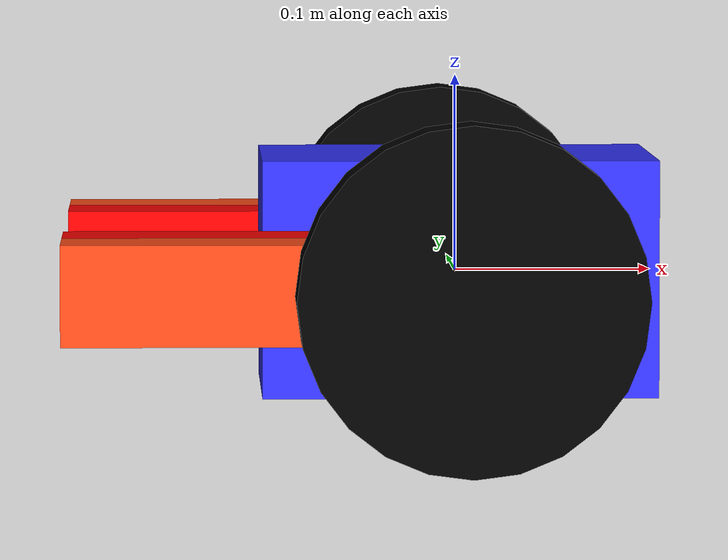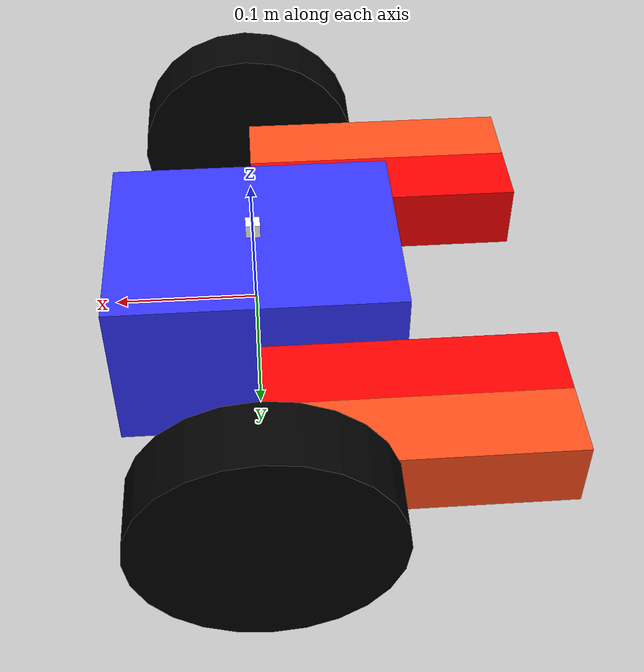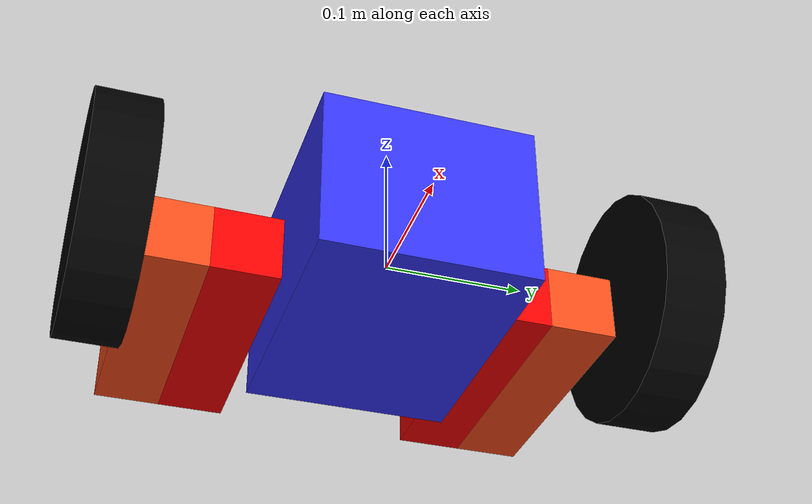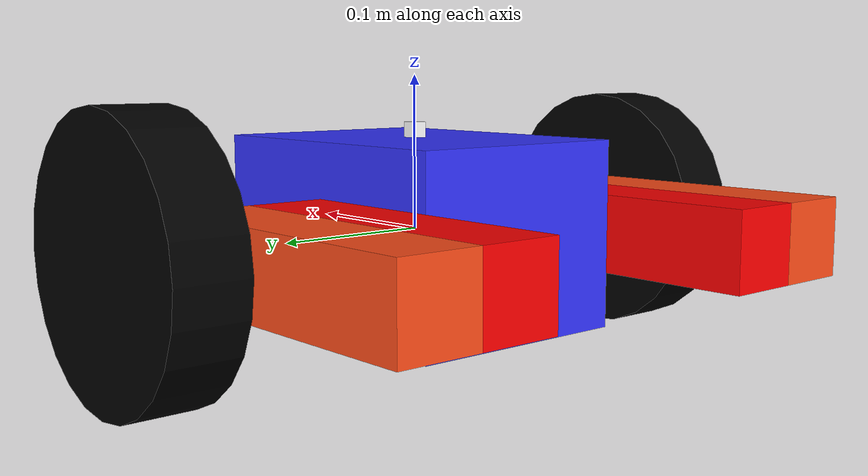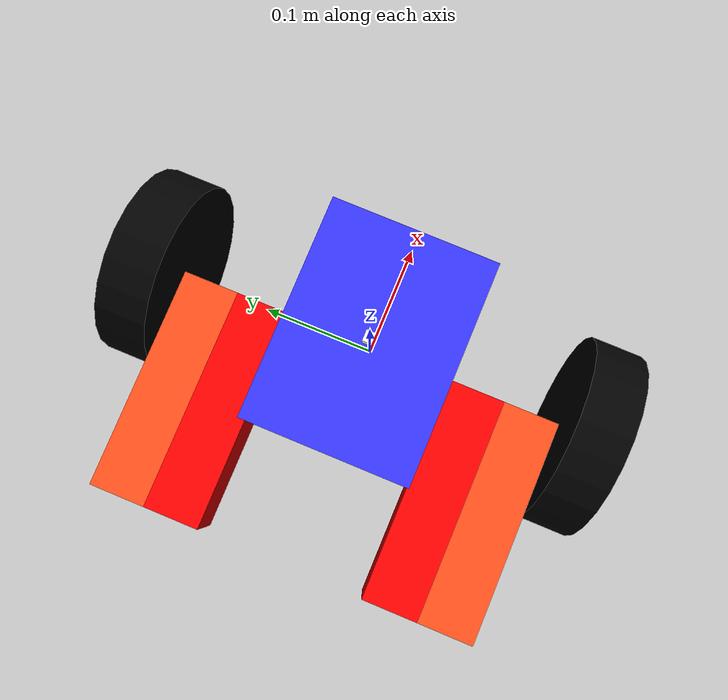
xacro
<?xml version="1.0"?>
<robot xmlns:xacro="http://www.ros.org/wiki/xacro">

    <xacro:include filename="consts.xacro"/>
    <xacro:include filename='inertial_macros.xacro'/>

    <!-- Limits -->
    <xacro:macro name="hip_limits">
        <limit lower="${hip_low_limit}" upper="${hip_high_limit}" velocity="${velocity}" effort="${effort}"/>
    </xacro:macro>
    <xacro:macro name="knee_limits">
        <limit lower="${knee_low_limit}" upper="${knee_high_limit}" velocity="${velocity}" effort="${effort}"/>
    </xacro:macro>

    <!-- *********** base link *********** -->
    <link name="base_link"></link>

    <link name="chassis_link">
        <xacro:inertial_box mass="${chassis_mass}" x="${chassis_length}" y="${chassis_width}" z="${chassis_height}">
            <origin xyz="0 0 0" rpy="0 0 0"/>
        </xacro:inertial_box>
        <visual>
            <origin xyz="0.0 0.0 0.0" rpy="0.0 0.0 0.0"/>
            <geometry>
                <box size="${chassis_length} ${chassis_width} ${chassis_height}"/>
            </geometry>
            <material name="blue"/>
        </visual>
        <collision>
            <origin xyz="0.0 0.0 0.0" rpy="0.0 0.0 0.0"/>
            <geometry>
                <box size="${chassis_length} ${chassis_width} ${chassis_height}"/>
            </geometry>
            <material name="blue"/>
        </collision>
    </link>

    <!-- imu -->
    <link name="imu_link">
        <xacro:inertial_box mass="${imu_mass}" x="${imu_length}" y="${imu_width}" z="${imu_height}">
            <origin xyz="0 0 0" rpy="0 0 0"/>
        </xacro:inertial_box>
        <visual>
            <origin xyz="0.0 0.0 0.0" rpy="0.0 0.0 0.0"/>
            <geometry>
                <box size="${imu_length} ${imu_width} ${imu_height}"/>
            </geometry>
            <material name="white"/>
        </visual>
        <collision>
            <origin xyz="0.0 0.0 0.0" rpy="0.0 0.0 0.0"/>
            <geometry>
                <box size="${imu_length} ${imu_width} ${imu_height}"/>
            </geometry>
            <material name="white"/>
        </collision>
    </link>

    <!-- hips -->
    <link name="left_hip_link">
        <visual>
            <origin xyz="0 0 -${rod_height/2}" rpy="0 0 0"/>
            <geometry>
                <box size="${rod_length} ${rod_width} ${rod_height}"/>
            </geometry>
            <material name="red"/>
        </visual>
        <collision>
            <origin xyz="0 0 -${rod_height/2}" rpy="0 0 0"/>
            <geometry>
                <box size="${rod_length} ${rod_width} ${rod_height}"/>
            </geometry>
            <material name="red"/>
        </collision>
        <xacro:inertial_box mass="${rod_mass}" x="${rod_length}" y="${rod_width}" z="${rod_height}">
            <origin xyz="0 0 -${rod_height/2}" rpy="0 0 0"/>
        </xacro:inertial_box>
    </link>

    <link name="right_hip_link">
        <visual>
            <origin xyz="0 0 -${rod_height/2}" rpy="0 0 0"/>
            <geometry>
                <box size="${rod_length} ${rod_width} ${rod_height}"/>
            </geometry>
            <material name="red"/>
        </visual>
        <collision>
            <origin xyz="0 0 -${rod_height/2}" rpy="0 0 0"/>
            <geometry>
                <box size="${rod_length} ${rod_width} ${rod_height}"/>
            </geometry>
            <material name="red"/>
        </collision>
        <xacro:inertial_box mass="${rod_mass}" x="${rod_length}" y="${rod_width}" z="${rod_height}">
            <origin xyz="0 0 -${rod_height/2}" rpy="0 0 0"/>
        </xacro:inertial_box>
    </link>

    <!-- knees -->
    <link name="left_knee_link">
        <visual>
            <origin xyz="0 0 ${rod_height/2}" rpy="0 0 0"/>
            <geometry>
                <box size="${rod_length} ${rod_width} ${rod_height}"/>
            </geometry>
            <material name="orange"/>
        </visual>
        <collision>
            <origin xyz="0 0 ${rod_height/2}" rpy="0 0 0"/>
            <geometry>
                <box size="${rod_length} ${rod_width} ${rod_height}"/>
            </geometry>
            <material name="orange"/>
        </collision>
        <xacro:inertial_box mass="${rod_mass}" x="${rod_length}" y="${rod_width}" z="${rod_height}">
            <origin xyz="0 0 ${rod_height/2}" rpy="0 0 0"/>
        </xacro:inertial_box>
    </link>

    <link name="right_knee_link">
        <visual>
            <origin xyz="0 0 ${rod_height/2}" rpy="0 0 0"/>
            <geometry>
                <box size="${rod_length} ${rod_width} ${rod_height}"/>
            </geometry>
            <material name="orange"/>
        </visual>
        <collision>
            <origin xyz="0 0 ${rod_height/2}" rpy="0 0 0"/>
            <geometry>
                <box size="${rod_length} ${rod_width} ${rod_height}"/>
            </geometry>
            <material name="orange"/>
        </collision>
        <xacro:inertial_box mass="${rod_mass}" x="${rod_length}" y="${rod_width}" z="${rod_height}">
            <origin xyz="0 0 ${rod_height/2}" rpy="0 0 0"/>
        </xacro:inertial_box>
    </link>

    <!-- wheels -->

    <link name="left_wheel">
        <visual>
            <origin xyz="0 0 0" rpy="0 0 0"/>
            <geometry>
                <cylinder radius="${wheel_radius}" length="${wheel_length}"/>
            </geometry>
            <material name="black"/>
        </visual>
        <collision>
            <origin xyz="0 0 0" rpy="0 0 0"/>
            <geometry>
                <cylinder radius="${wheel_radius}" length="${wheel_length}"/>
            </geometry>
            <surface>
                <friction>
                    <ode>
                        <mu>1</mu>
                        <mu2>1</mu2>
                        <fdir1>1 0 0</fdir1>
                    </ode>
                </friction>
            </surface>
        </collision>
        <xacro:inertial_cylinder mass="${wheel_mass}" length="${wheel_length}" radius="${wheel_radius}">
            <origin xyz="0 0 0" rpy="0 0 0"/>
        </xacro:inertial_cylinder>
    </link>

    <link name="right_wheel">
        <visual>
            <origin xyz="0 0 0" rpy="0 0 0"/>
            <geometry>
                <cylinder radius="${wheel_radius}" length="${wheel_length}"/>
            </geometry>
            <material name="black"/>
        </visual>
        <collision>
            <origin xyz="0 0 0" rpy="0 0 0"/>
            <geometry>
                <cylinder radius="${wheel_radius}" length="${wheel_length}"/>
            </geometry>
            <surface>
                <friction>
                    <ode>
                        <mu>1</mu>
                        <mu2>1</mu2>
                        <fdir1>1 0 0</fdir1>
                    </ode>
                </friction>
            </surface>
        </collision>
        <xacro:inertial_cylinder mass="${wheel_mass}" length="${wheel_length}" radius="${wheel_radius}">
            <origin xyz="0 0 0" rpy="0 0 0"/>
        </xacro:inertial_cylinder>
    </link>

    <!-- chassis_joint -->
    <joint name="chassis_joint" type="fixed">
        <parent link="base_link"/>
        <child link="chassis_link"/>
    </joint>

    <!-- imu joint -->
    <joint name="imu_joint" type="fixed">
        <origin xyz="0.0 0.0 ${chassis_height/2 + imu_height/2}" rpy="0.0 0.0 0.0"/>
        <parent link="chassis_link"/>
        <child link="imu_link"/>
    </joint>

    <!-- hip joints -->
    <joint name="left_hip_joint" type="revolute">
        <origin xyz="0.0 ${chassis_width/2 + rod_width/2} 0.0" rpy="0.0 ${3.142/2} 0.0"/>
        <parent link="chassis_link"/>
        <child link="left_hip_link"/>
        <axis xyz="0.0 1.0 0.0"/>
        <xacro:hip_limits></xacro:hip_limits>
        <xacro:if value="${use_dynamics}">
            <xacro:hip_joint_dynamics></xacro:hip_joint_dynamics>
        </xacro:if>
    </joint>

    <joint name="right_hip_joint" type="revolute">
        <origin xyz="0.0 -${chassis_width/2 + rod_width/2} 0.0" rpy="0.0 ${3.142/2} 0.0"/>
        <parent link="chassis_link"/>
        <child link="right_hip_link"/>
        <axis xyz="0.0 1.0 0.0"/>
        <xacro:hip_limits></xacro:hip_limits>
        <xacro:if value="${use_dynamics}">
            <xacro:hip_joint_dynamics></xacro:hip_joint_dynamics>
        </xacro:if>
    </joint>

    <!-- knee joints  -->

    <joint name="left_knee_joint" type="revolute">
        <origin xyz="0.0 ${rod_width} -${rod_height}" rpy="0.0 0.0 0.0"/>
        <parent link="left_hip_link"/>
        <child link="left_knee_link"/>
        <axis xyz="0.0 1.0 0.0"/>
        <xacro:knee_limits></xacro:knee_limits>
        <xacro:if value="${use_dynamics}">
            <xacro:knee_joint_dynamics></xacro:knee_joint_dynamics>
        </xacro:if>
    </joint>

    <joint name="right_knee_joint" type="revolute">
        <origin xyz="0.0 -${rod_width} -${rod_height}" rpy="0.0 0.0 0.0"/>
        <parent link="right_hip_link"/>
        <child link="right_knee_link"/>
        <axis xyz="0.0 1.0 0.0"/>
        <xacro:knee_limits></xacro:knee_limits>
        <xacro:if value="${use_dynamics}">
            <xacro:knee_joint_dynamics></xacro:knee_joint_dynamics>
        </xacro:if>
    </joint>

    <!-- wheel joints -->

    <joint name="left_wheel_joint" type="continuous">
      <origin xyz="0 ${wheel_length/2 + rod_length/2} ${rod_height}" rpy="${3.142/2} 0 0"/>
      <parent link="left_knee_link"/>
      <child link="left_wheel"/>
      <axis xyz="0.0 0.0 -1.0"/>
    </joint>

    <joint name="right_wheel_joint" type="continuous">
      <origin xyz="0 -${wheel_length/2 + rod_length/2} ${rod_height}" rpy="${3.142/2} 0 0"/>
      <parent link="right_knee_link"/>
      <child link="right_wheel"/>
      <axis xyz="0.0 0 -1.0"/>
    </joint>

</robot>

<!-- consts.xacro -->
<robot xmlns:xacro="http://www.ros.org/wiki/xacro">

    <!-- joint's limits -->
    <xacro:property name="hip_high_limit" value="1.047198"/>
    <xacro:property name="hip_low_limit" value="-1.047198"/>
    <xacro:property name="knee_high_limit" value="2.094395"/>
    <xacro:property name="knee_low_limit" value="-2.094395"/>
    <xacro:property name="velocity" value="1"/>
    <xacro:property name="effort" value="10"/>

    <!-- joint's dynamics -->
    <xacro:property name="use_dynamics" value="true"/>
    <xacro:macro name="hip_joint_dynamics">
        <dynamics damping="0.01" friction="10000"/>
    </xacro:macro>
    <xacro:macro name="knee_joint_dynamics">
        <dynamics damping="0.01" friction="10000"/>
    </xacro:macro>

    <xacro:property name="wheel_radius" value="0.0855"/>
    <xacro:property name="wheel_lenght" value="0.045"/>

    <material name="white">
        <color rgba="1 1 1 1" />
    </material>

    <material name="orange">
        <color rgba="1 0.3 0.1 1"/>
    </material>

    <material name="blue">
        <color rgba="0.2 0.2 1 1"/>
    </material>

    <material name="black">
        <color rgba="0 0 0 1"/>
    </material>

    <material name="red">
        <color rgba="1 0 0 1"/>
    </material>

    <xacro:property name="wheel_radius" value="0.0855"/>
    <xacro:property name="wheel_length" value="0.045"/>

    <!-- Width, length, height = x,y,z -->
    <xacro:property name="chassis_length" value="0.2"/>
    <xacro:property name="chassis_width" value="0.15"/>
    <xacro:property name="chassis_height" value="0.12"/>

    <xacro:property name="imu_length" value="0.01"/>
    <xacro:property name="imu_width" value="0.01"/>
    <xacro:property name="imu_height" value="0.01"/>

    <xacro:property name="rod_length" value="0.05"/>
    <xacro:property name="rod_width" value="0.05"/>
    <xacro:property name="rod_height" value="0.2"/>

    <xacro:property name="chassis_mass" value="2.0"/>
    <xacro:property name="rod_mass" value="1.0"/>
    <xacro:property name="wheel_mass" value="2.2"/>
    <xacro:property name="imu_mass" value="0.01"/>

</robot>
